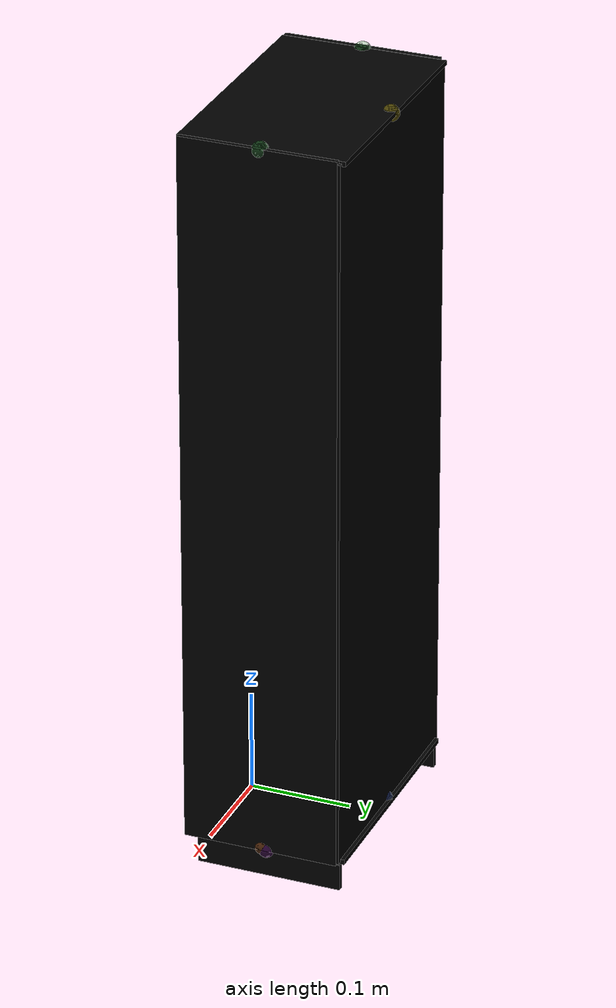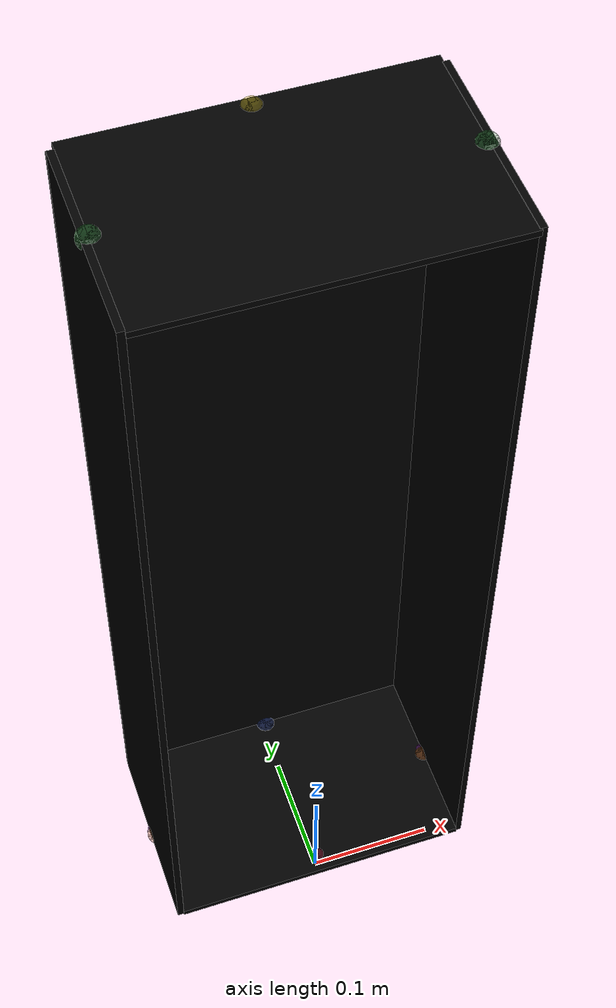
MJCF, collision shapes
<mujoco model="cabinet_akurum_0014">
    <custom>
        <numeric data="-0.488339 -0.082045 0.00251 0.707107 -0.707107 0.0 0.0" name="0_part0_initpos"/>
        <numeric data="0.533952 0.038265 0.00251 0.706964 -0.0 -0.0 0.707249" name="7_part7_initpos"/>
        <numeric data="-0.499216 0.087167 0.00251 0.999792 -0.0 0.0 0.020393" name="6_part6_initpos"/>
        <numeric data="0.041876 0.311137 0.001347 -0.500705 0.500705 -0.499294 0.499294" name="5_part5_initpos"/>
        <numeric data="0.042887 -0.099516 0.002734 0.707047 -0.009217 0.707047 0.009217" name="4_part4_initpos"/>
        <numeric data="0.035125 0.069502 0.002286 0.707107 8e-06 0.707107 -8e-06" name="3_part3_initpos"/>
        <numeric data="0.582547 0.314634 0.002613 0.707086 0.005462 0.707086 -0.005462" name="2_part2_initpos"/>
        <numeric data="0.471348 0.315726 0.00251 0.7071 0.003145 0.7071 -0.003145" name="1_part1_initpos"/>
    </custom>
    <asset>
        <mesh file="cabinet_akurum_0014/0.stl" name="part0" scale="0.0004 0.0004 0.0004"/>
        <mesh file="cabinet_akurum_0014/7.stl" name="part7" scale="0.0004 0.0004 0.0004"/>
        <mesh file="cabinet_akurum_0014/6.stl" name="part6" scale="0.0004 0.0004 0.0004"/>
        <mesh file="cabinet_akurum_0014/5.stl" name="part5" scale="0.0004 0.0004 0.0004"/>
        <mesh file="cabinet_akurum_0014/4.stl" name="part4" scale="0.0004 0.0004 0.0004"/>
        <mesh file="cabinet_akurum_0014/3.stl" name="part3" scale="0.0004 0.0004 0.0004"/>
        <mesh file="cabinet_akurum_0014/2.stl" name="part2" scale="0.0004 0.0004 0.0004"/>
        <mesh file="cabinet_akurum_0014/1.stl" name="part1" scale="0.0004 0.0004 0.0004"/>
    </asset>
    <equality>
        <weld active="false" body1="7_part7" body2="3_part3" solimp="1 1 0.5" solref="0.01 0.3"/>
        <weld active="false" body1="7_part7" body2="4_part4" solimp="1 1 0.5" solref="0.01 0.3"/>
        <weld active="false" body1="0_part0" body2="6_part6" solimp="1 1 0.5" solref="0.01 0.3"/>
        <weld active="false" body1="7_part7" body2="5_part5" solimp="1 1 0.5" solref="0.01 0.3"/>
        <weld active="false" body1="6_part6" body2="3_part3" solimp="1 1 0.5" solref="0.01 0.3"/>
        <weld active="false" body1="6_part6" body2="4_part4" solimp="1 1 0.5" solref="0.01 0.3"/>
        <weld active="false" body1="6_part6" body2="2_part2" solimp="1 1 0.5" solref="0.01 0.3"/>
        <weld active="false" body1="6_part6" body2="1_part1" solimp="1 1 0.5" solref="0.01 0.3"/>
        <weld active="false" body1="6_part6" body2="5_part5" solimp="1 1 0.5" solref="0.01 0.3"/>
    </equality>
    <worldbody>
        <body name="0_part0" pos="0.0 0.0 0.0" quat="1 0 0 0">
            <geom conaffinity="0" contype="0" density="0" mesh="part0" name="0_part0_mesh" pos="0.0 0.0 0.0"
                  rgba="0.82 0.71 0.55 1" type="mesh"/>
            <site name="0_part0_horizontal_radius_site" pos="0.0 0.0 0.0" quat="1 0 0 0" rgba="0 0 0 0" size="0.008"/>
            <site name="0_part0_top_site" pos="0.0 0.0 0.013335" quat="1 0 0 0" rgba="0 0 0 0" size="0.008"/>
            <site name="0_part0_bottom_site" pos="0.0 0.0 -0.013335" quat="1 0 0 0" rgba="0 0 0 0" size="0.008"/>
            <site name="0_part0_corner_site8" pos="-0.11938 0.00254 0.013335" quat="1 0 0 0" rgba="0 0 0 0"
                  size="0.008"/>
            <site name="0_part0_corner_site7" pos="0.11938 0.00254 0.013335" quat="1 0 0 0" rgba="0 0 0 0"
                  size="0.008"/>
            <site name="0_part0_corner_site6" pos="0.11938 -0.00254 0.013335" quat="1 0 0 0" rgba="0 0 0 0"
                  size="0.008"/>
            <site name="0_part0_corner_site5" pos="-0.11938 -0.00254 0.013335" quat="1 0 0 0" rgba="0 0 0 0"
                  size="0.008"/>
            <site name="0_part0_corner_site4" pos="-0.11938 0.00254 -0.013335" quat="1 0 0 0" rgba="0 0 0 0"
                  size="0.008"/>
            <site name="0_part0_corner_site3" pos="0.11938 0.00254 -0.013335" quat="1 0 0 0" rgba="0 0 0 0"
                  size="0.008"/>
            <site name="0_part0_corner_site2" pos="0.11938 -0.00254 -0.013335" quat="1 0 0 0" rgba="0 0 0 0"
                  size="0.008"/>
            <site name="0_part0_corner_site1" pos="-0.11938 -0.00254 -0.013335" quat="1 0 0 0" rgba="0 0 0 0"
                  size="0.008"/>
            <site name="longleg-botpanel,0,180,conn_site1" pos="0.0 -0.0009199999999999999 0.013840000000000002"
                  quat="1 0 0 0" rgba="0.9019 0.0980 0.2941 0.3" size="0.008"/>
            <geom density="50" name="noviz_collision_0_part0_0" pos="0.0 0.0 0.0" quat="1 0 0 0" rgba="0 0 0 0"
                  size="0.11938 0.00254 0.013335" solref="0.001 1" type="box"/>
        </body>
        <body name="7_part7" pos="-0.0 0.06355368584000001 0.7219949951200001" quat="1 0 0 0">
            <geom conaffinity="0" contype="0" density="0" mesh="part7" name="7_part7_mesh" pos="0.0 0.0 0.0"
                  rgba="0.82 0.71 0.55 1" type="mesh"/>
            <site name="7_part7_horizontal_radius_site" pos="4e-11 0.0 0.0" quat="1 0 0 0" rgba="0 0 0 0" size="0.008"/>
            <site name="7_part7_top_site" pos="4e-11 0.0 0.00254001464" quat="1 0 0 0" rgba="0 0 0 0" size="0.008"/>
            <site name="7_part7_bottom_site" pos="4e-11 0.0 -0.00254001464" quat="1 0 0 0" rgba="0 0 0 0" size="0.008"/>
            <site name="7_part7_corner_site8" pos="-0.12191999996 0.07879370116000001 0.00254001464" quat="1 0 0 0"
                  rgba="0 0 0 0" size="0.008"/>
            <site name="7_part7_corner_site7" pos="0.12192000003999999 0.07879370116000001 0.00254001464" quat="1 0 0 0"
                  rgba="0 0 0 0" size="0.008"/>
            <site name="7_part7_corner_site6" pos="0.12192000003999999 -0.07879370116000001 0.00254001464"
                  quat="1 0 0 0" rgba="0 0 0 0" size="0.008"/>
            <site name="7_part7_corner_site5" pos="-0.12191999996 -0.07879370116000001 0.00254001464" quat="1 0 0 0"
                  rgba="0 0 0 0" size="0.008"/>
            <site name="7_part7_corner_site4" pos="-0.12191999996 0.07879370116000001 -0.00254001464" quat="1 0 0 0"
                  rgba="0 0 0 0" size="0.008"/>
            <site name="7_part7_corner_site3" pos="0.12192000003999999 0.07879370116000001 -0.00254001464"
                  quat="1 0 0 0" rgba="0 0 0 0" size="0.008"/>
            <site name="7_part7_corner_site2" pos="0.12192000003999999 -0.07879370116000001 -0.00254001464"
                  quat="1 0 0 0" rgba="0 0 0 0" size="0.008"/>
            <site name="7_part7_corner_site1" pos="-0.12191999996 -0.07879370116000001 -0.00254001464" quat="1 0 0 0"
                  rgba="0 0 0 0" size="0.008"/>
            <site name="toppanel-sidepanel,0,conn_site2" pos="-0.1216 -0.001296852 0.0" quat="0.7071067 0 -0.7071068 0"
                  rgba="0.2352 0.7058 0.2941 0.3" size="0.008"/>
            <site name="toppanel-sidepanel,0,conn_site1" pos="0.12128 -0.001296852 0.0" quat="0.7071067 0 0.7071068 0"
                  rgba="0.2352 0.7058 0.2941 0.3" size="0.008"/>
            <site name="toppanel-backpanel,0,conn_site1" pos="0.0 0.07404632000000001 -0.0015550280000000002"
                  quat="1 0 0 0" rgba="1.0 0.8823 0.0980 0.3" size="0.008"/>
            <geom density="50" name="noviz_collision_7_part7_0" pos="0.0005976600000000001 0 -0.000132716"
                  quat="1 0 0 0" rgba="0 0 0 0" size="0.12251764000000001 0.08 0.0024073239999999997" solref="0.001 1"
                  type="box"/>
        </body>
        <body name="6_part6" pos="0.0 0.06355368584000001 0.015875" quat="1 0 0 0">
            <geom conaffinity="0" contype="0" density="0" mesh="part6" name="6_part6_mesh" pos="0.0 0.0 0.0"
                  rgba="0.82 0.71 0.55 1" type="mesh"/>
            <site name="6_part6_horizontal_radius_site" pos="4e-11 0.0 -0.0" quat="1 0 0 0" rgba="0 0 0 0"
                  size="0.008"/>
            <site name="6_part6_top_site" pos="4e-11 0.0 0.00254" quat="1 0 0 0" rgba="0 0 0 0" size="0.008"/>
            <site name="6_part6_bottom_site" pos="4e-11 0.0 -0.00254" quat="1 0 0 0" rgba="0 0 0 0" size="0.008"/>
            <site name="6_part6_corner_site8" pos="-0.12191999996 0.07879370116000001 0.00254" quat="1 0 0 0"
                  rgba="0 0 0 0" size="0.008"/>
            <site name="6_part6_corner_site7" pos="0.12192000003999999 0.07879370116000001 0.00254" quat="1 0 0 0"
                  rgba="0 0 0 0" size="0.008"/>
            <site name="6_part6_corner_site6" pos="0.12192000003999999 -0.07879370116000001 0.00254" quat="1 0 0 0"
                  rgba="0 0 0 0" size="0.008"/>
            <site name="6_part6_corner_site5" pos="-0.12191999996 -0.07879370116000001 0.00254" quat="1 0 0 0"
                  rgba="0 0 0 0" size="0.008"/>
            <site name="6_part6_corner_site4" pos="-0.12191999996 0.07879370116000001 -0.00254" quat="1 0 0 0"
                  rgba="0 0 0 0" size="0.008"/>
            <site name="6_part6_corner_site3" pos="0.12192000003999999 0.07879370116000001 -0.00254" quat="1 0 0 0"
                  rgba="0 0 0 0" size="0.008"/>
            <site name="6_part6_corner_site2" pos="0.12192000003999999 -0.07879370116000001 -0.00254" quat="1 0 0 0"
                  rgba="0 0 0 0" size="0.008"/>
            <site name="6_part6_corner_site1" pos="-0.12191999996 -0.07879370116000001 -0.00254" quat="1 0 0 0"
                  rgba="0 0 0 0" size="0.008"/>
            <site name="botpanel-backpanel,0,conn_site1" pos="0.0 0.07220632 0.00127" quat="0 1 0 0"
                  rgba="0.2627 0.3882 0.8470 0.3" size="0.008"/>
            <site name="botpanel-sidepanel,0,conn_site2" pos="-0.12224000000000002 -0.001296852 0.0"
                  quat="0.7071067 0 -0.7071068 0" rgba="0.9607 0.5098 0.1921 0.3" size="0.008"/>
            <site name="botpanel-sidepanel,0,conn_site1" pos="0.12196 -0.001296852 -0.000715"
                  quat="0.7071067 0 0.7071068 0" rgba="0.9607 0.5098 0.1921 0.3" size="0.008"/>
            <site name="botpanel-shortleg,0,180,conn_site2" pos="-0.1216 0.00253998 -0.0018750000000000001"
                  quat="1 0 0 0" rgba="0.5686 0.1176 0.7058 0.3" size="0.008"/>
            <site name="botpanel-shortleg,0,180,conn_site1" pos="0.12240000000000001 0.00253998 -0.002595"
                  quat="1 0 0 0" rgba="0.5686 0.1176 0.7058 0.3" size="0.008"/>
            <site name="botpanel-longleg,0,180,conn_site1" pos="0.0 -0.06447368 -0.0020350000000000004" quat="1 0 0 0"
                  rgba="0.9019 0.0980 0.2941 0.3" size="0.008"/>
            <geom density="50" name="noviz_collision_6_part6_0" pos="7.2e-07 0 0.000100368" quat="1 0 0 0"
                  rgba="0 0 0 0" size="0.12192072000000001 0.08 0.002640368" solref="0.001 1" type="box"/>
        </body>
        <body name="5_part5" pos="-0.0 0.1385372956 0.36893500976000004" quat="1 0 0 0">
            <geom conaffinity="0" contype="0" density="0" mesh="part5" name="5_part5_mesh" pos="0.0 0.0 0.0"
                  rgba="0.82 0.71 0.55 1" type="mesh"/>
            <site name="5_part5_horizontal_radius_site" pos="-0.0 -0.0 0.0" quat="1 0 0 0" rgba="0 0 0 0" size="0.008"/>
            <site name="5_part5_top_site" pos="0.0 -0.0 0.35306000976" quat="1 0 0 0" rgba="0 0 0 0" size="0.008"/>
            <site name="5_part5_bottom_site" pos="0.0 -0.0 -0.35306000976" quat="1 0 0 0" rgba="0 0 0 0" size="0.008"/>
            <site name="5_part5_corner_site8" pos="-0.127 0.00137731092 0.35306000976" quat="1 0 0 0" rgba="0 0 0 0"
                  size="0.008"/>
            <site name="5_part5_corner_site7" pos="0.127 0.00137731092 0.35306000976" quat="1 0 0 0" rgba="0 0 0 0"
                  size="0.008"/>
            <site name="5_part5_corner_site6" pos="0.127 -0.0013773109600000001 0.35306000976" quat="1 0 0 0"
                  rgba="0 0 0 0" size="0.008"/>
            <site name="5_part5_corner_site5" pos="-0.127 -0.0013773109600000001 0.35306000976" quat="1 0 0 0"
                  rgba="0 0 0 0" size="0.008"/>
            <site name="5_part5_corner_site4" pos="-0.127 0.00137731092 -0.35306000976" quat="1 0 0 0" rgba="0 0 0 0"
                  size="0.008"/>
            <site name="5_part5_corner_site3" pos="0.127 0.00137731092 -0.35306000976" quat="1 0 0 0" rgba="0 0 0 0"
                  size="0.008"/>
            <site name="5_part5_corner_site2" pos="0.127 -0.0013773109600000001 -0.35306000976" quat="1 0 0 0"
                  rgba="0 0 0 0" size="0.008"/>
            <site name="5_part5_corner_site1" pos="-0.127 -0.0013773109600000001 -0.35306000976" quat="1 0 0 0"
                  rgba="0 0 0 0" size="0.008"/>
            <site name="backpanel-toppanel,0,conn_site1" pos="0.0 -0.000937292 0.351505" quat="1 0 0 0"
                  rgba="1.0 0.8823 0.0980 0.3" size="0.008"/>
            <site name="backpanel-botpanel,0,conn_site1" pos="0.0 -0.0027772960000000003 -0.35179000000000005"
                  quat="0 1 0 0" rgba="0.2627 0.3882 0.8470 0.3" size="0.008"/>
            <geom density="50" name="noviz_collision_5_part5_0" pos="0.0 1.2000000000000002e-08 -2.4000000000000003e-08"
                  quat="1 0 0 0" rgba="0 0 0 0" size="0.127 0.00137732 0.35306" solref="0.001 1" type="box"/>
        </body>
        <body name="4_part4" pos="-0.12446 0.06095999312000001 0.36893500244000005" quat="1 0 0 0">
            <geom conaffinity="0" contype="0" density="0" mesh="part4" name="4_part4_mesh" pos="0.0 0.0 0.0"
                  rgba="0.82 0.71 0.55 1" type="mesh"/>
            <site name="4_part4_horizontal_radius_site" pos="0.0 8e-10 -2.4400000000000003e-09" quat="1 0 0 0"
                  rgba="0 0 0 0" size="0.008"/>
            <site name="4_part4_top_site" pos="0.0 7.600000000000001e-10 0.3556" quat="1 0 0 0" rgba="0 0 0 0"
                  size="0.008"/>
            <site name="4_part4_bottom_site" pos="0.0 7.600000000000001e-10 -0.35560000488000004" quat="1 0 0 0"
                  rgba="0 0 0 0" size="0.008"/>
            <site name="4_part4_corner_site8" pos="-0.00254 0.07620000768 0.3556" quat="1 0 0 0" rgba="0 0 0 0"
                  size="0.008"/>
            <site name="4_part4_corner_site7" pos="0.00254 0.07620000768 0.3556" quat="1 0 0 0" rgba="0 0 0 0"
                  size="0.008"/>
            <site name="4_part4_corner_site6" pos="0.00254 -0.07620000612000001 0.3556" quat="1 0 0 0" rgba="0 0 0 0"
                  size="0.008"/>
            <site name="4_part4_corner_site5" pos="-0.00254 -0.07620000612000001 0.3556" quat="1 0 0 0" rgba="0 0 0 0"
                  size="0.008"/>
            <site name="4_part4_corner_site4" pos="-0.00254 0.07620000768 -0.35560000488000004" quat="1 0 0 0"
                  rgba="0 0 0 0" size="0.008"/>
            <site name="4_part4_corner_site3" pos="0.00254 0.07620000768 -0.35560000488000004" quat="1 0 0 0"
                  rgba="0 0 0 0" size="0.008"/>
            <site name="4_part4_corner_site2" pos="0.00254 -0.07620000612000001 -0.35560000488000004" quat="1 0 0 0"
                  rgba="0 0 0 0" size="0.008"/>
            <site name="4_part4_corner_site1" pos="-0.00254 -0.07620000612000001 -0.35560000488000004" quat="1 0 0 0"
                  rgba="0 0 0 0" size="0.008"/>
            <site name="sidepanel-toppanel,0,conn_site2" pos="0.002859996 0.001296844 0.35306"
                  quat="0.7071067 0 -0.7071068 0" rgba="0.2352 0.7058 0.2941 0.3" size="0.008"/>
            <site name="sidepanel-botpanel,0,conn_site2" pos="0.002219996 0.001296844 -0.35306"
                  quat="0.7071067 0 -0.7071068 0" rgba="0.9607 0.5098 0.1921 0.3" size="0.008"/>
            <geom density="50" name="noviz_collision_4_part4_0" pos="0.000111804 -3.984400000000001e-05 0.0"
                  quat="1 0 0 0" rgba="0 0 0 0" size="0.0026518080000000003 0.07616016 0.3556" solref="0.001 1"
                  type="box"/>
        </body>
        <body name="3_part3" pos="0.12445999756000002 0.06095999312000001 0.36893500244000005" quat="1 0 0 0">
            <geom conaffinity="0" contype="0" density="0" mesh="part3" name="3_part3_mesh" pos="0.0 0.0 0.0"
                  rgba="0.82 0.71 0.55 1" type="mesh"/>
            <site name="3_part3_horizontal_radius_site" pos="0.0 8e-10 -2.4400000000000003e-09" quat="1 0 0 0"
                  rgba="0 0 0 0" size="0.008"/>
            <site name="3_part3_top_site" pos="0.0 7.600000000000001e-10 0.3556" quat="1 0 0 0" rgba="0 0 0 0"
                  size="0.008"/>
            <site name="3_part3_bottom_site" pos="0.0 7.600000000000001e-10 -0.35560000488000004" quat="1 0 0 0"
                  rgba="0 0 0 0" size="0.008"/>
            <site name="3_part3_corner_site8" pos="-0.00254000244 0.07620000768 0.3556" quat="1 0 0 0" rgba="0 0 0 0"
                  size="0.008"/>
            <site name="3_part3_corner_site7" pos="0.00254000244 0.07620000768 0.3556" quat="1 0 0 0" rgba="0 0 0 0"
                  size="0.008"/>
            <site name="3_part3_corner_site6" pos="0.00254000244 -0.07620000612000001 0.3556" quat="1 0 0 0"
                  rgba="0 0 0 0" size="0.008"/>
            <site name="3_part3_corner_site5" pos="-0.00254000244 -0.07620000612000001 0.3556" quat="1 0 0 0"
                  rgba="0 0 0 0" size="0.008"/>
            <site name="3_part3_corner_site4" pos="-0.00254000244 0.07620000768 -0.35560000488000004" quat="1 0 0 0"
                  rgba="0 0 0 0" size="0.008"/>
            <site name="3_part3_corner_site3" pos="0.00254000244 0.07620000768 -0.35560000488000004" quat="1 0 0 0"
                  rgba="0 0 0 0" size="0.008"/>
            <site name="3_part3_corner_site2" pos="0.00254000244 -0.07620000612000001 -0.35560000488000004"
                  quat="1 0 0 0" rgba="0 0 0 0" size="0.008"/>
            <site name="3_part3_corner_site1" pos="-0.00254000244 -0.07620000612000001 -0.35560000488000004"
                  quat="1 0 0 0" rgba="0 0 0 0" size="0.008"/>
            <site name="sidepanel-toppanel,0,conn_site1" pos="-0.003179992 0.001296844 0.35306"
                  quat="0.7071067 0 0.7071068 0" rgba="0.2352 0.7058 0.2941 0.3" size="0.008"/>
            <site name="sidepanel-botpanel,0,conn_site1" pos="-0.0025 0.001296844 -0.353775"
                  quat="0.7071067 0 0.7071068 0" rgba="0.9607 0.5098 0.1921 0.3" size="0.008"/>
            <geom density="50" name="noviz_collision_3_part3_0" pos="-0.000111804 -3.984400000000001e-05 0.0"
                  quat="1 0 0 0" rgba="0 0 0 0" size="0.0024282 0.07616016 0.3556" solref="0.001 1" type="box"/>
        </body>
        <body name="2_part2" pos="0.12192000000000001 0.06863365164000002 -0.0" quat="1 0 0 0">
            <geom conaffinity="0" contype="0" density="0" mesh="part2" name="2_part2_mesh" pos="0.0 0.0 0.0"
                  rgba="0.82 0.71 0.55 1" type="mesh"/>
            <site name="2_part2_horizontal_radius_site" pos="0.0 -0.0 0.0" quat="1 0 0 0" rgba="0 0 0 0" size="0.008"/>
            <site name="2_part2_top_site" pos="0.0 0.0 0.013335" quat="1 0 0 0" rgba="0 0 0 0" size="0.008"/>
            <site name="2_part2_bottom_site" pos="0.0 0.0 -0.013335" quat="1 0 0 0" rgba="0 0 0 0" size="0.008"/>
            <site name="2_part2_corner_site8" pos="-0.00254 0.07117365164 0.013335" quat="1 0 0 0" rgba="0 0 0 0"
                  size="0.008"/>
            <site name="2_part2_corner_site7" pos="0.00254 0.07117365164 0.013335" quat="1 0 0 0" rgba="0 0 0 0"
                  size="0.008"/>
            <site name="2_part2_corner_site6" pos="0.00254 -0.07117365164 0.013335" quat="1 0 0 0" rgba="0 0 0 0"
                  size="0.008"/>
            <site name="2_part2_corner_site5" pos="-0.00254 -0.07117365164 0.013335" quat="1 0 0 0" rgba="0 0 0 0"
                  size="0.008"/>
            <site name="2_part2_corner_site4" pos="-0.00254 0.07117365164 -0.013335" quat="1 0 0 0" rgba="0 0 0 0"
                  size="0.008"/>
            <site name="2_part2_corner_site3" pos="0.00254 0.07117365164 -0.013335" quat="1 0 0 0" rgba="0 0 0 0"
                  size="0.008"/>
            <site name="2_part2_corner_site2" pos="0.00254 -0.07117365164 -0.013335" quat="1 0 0 0" rgba="0 0 0 0"
                  size="0.008"/>
            <site name="2_part2_corner_site1" pos="-0.00254 -0.07117365164 -0.013335" quat="1 0 0 0" rgba="0 0 0 0"
                  size="0.008"/>
            <site name="shortleg-botpanel,0,180,conn_site1"
                  pos="0.000480004 -0.0025399840000000003 0.013280000000000002" quat="1 0 0 0"
                  rgba="0.5686 0.1176 0.7058 0.3" size="0.008"/>
            <geom density="50" name="noviz_collision_2_part2_0" pos="0.0 0.0 0.0" quat="1 0 0 0" rgba="0 0 0 0"
                  size="0.0025399920000000005 0.07117364000000001 0.013335" solref="0.001 1" type="box"/>
        </body>
        <body name="1_part1" pos="-0.12192000000000001 0.06863365164000002 -0.0" quat="1 0 0 0">
            <geom conaffinity="0" contype="0" density="0" mesh="part1" name="1_part1_mesh" pos="0.0 0.0 0.0"
                  rgba="0.82 0.71 0.55 1" type="mesh"/>
            <site name="1_part1_horizontal_radius_site" pos="0.0 -0.0 0.0" quat="1 0 0 0" rgba="0 0 0 0" size="0.008"/>
            <site name="1_part1_top_site" pos="0.0 0.0 0.013335" quat="1 0 0 0" rgba="0 0 0 0" size="0.008"/>
            <site name="1_part1_bottom_site" pos="0.0 0.0 -0.013335" quat="1 0 0 0" rgba="0 0 0 0" size="0.008"/>
            <site name="1_part1_corner_site8" pos="-0.00254 0.07117365164 0.013335" quat="1 0 0 0" rgba="0 0 0 0"
                  size="0.008"/>
            <site name="1_part1_corner_site7" pos="0.00254 0.07117365164 0.013335" quat="1 0 0 0" rgba="0 0 0 0"
                  size="0.008"/>
            <site name="1_part1_corner_site6" pos="0.00254 -0.07117365164 0.013335" quat="1 0 0 0" rgba="0 0 0 0"
                  size="0.008"/>
            <site name="1_part1_corner_site5" pos="-0.00254 -0.07117365164 0.013335" quat="1 0 0 0" rgba="0 0 0 0"
                  size="0.008"/>
            <site name="1_part1_corner_site4" pos="-0.00254 0.07117365164 -0.013335" quat="1 0 0 0" rgba="0 0 0 0"
                  size="0.008"/>
            <site name="1_part1_corner_site3" pos="0.00254 0.07117365164 -0.013335" quat="1 0 0 0" rgba="0 0 0 0"
                  size="0.008"/>
            <site name="1_part1_corner_site2" pos="0.00254 -0.07117365164 -0.013335" quat="1 0 0 0" rgba="0 0 0 0"
                  size="0.008"/>
            <site name="1_part1_corner_site1" pos="-0.00254 -0.07117365164 -0.013335" quat="1 0 0 0" rgba="0 0 0 0"
                  size="0.008"/>
            <site name="shortleg-botpanel,0,180,conn_site2" pos="0.000319996 -0.0025399840000000003 0.014"
                  quat="1 0 0 0" rgba="0.5686 0.1176 0.7058 0.3" size="0.008"/>
            <geom density="50" name="noviz_collision_1_part1_0" pos="0.0 0.0 0.0" quat="1 0 0 0" rgba="0 0 0 0"
                  size="0.0025400040000000002 0.07117364000000001 0.013335" solref="0.001 1" type="box"/>
        </body>
    </worldbody>
    <actuator/>
    <sensor/>
    <contact/>
    <default/>
</mujoco>
